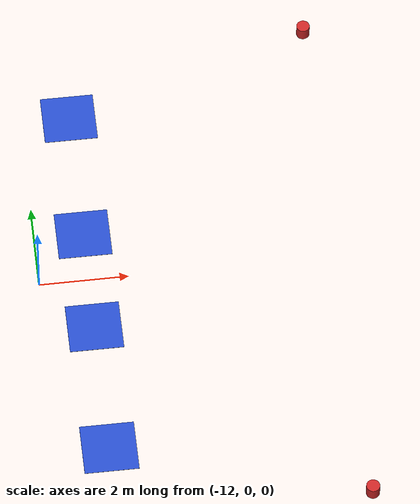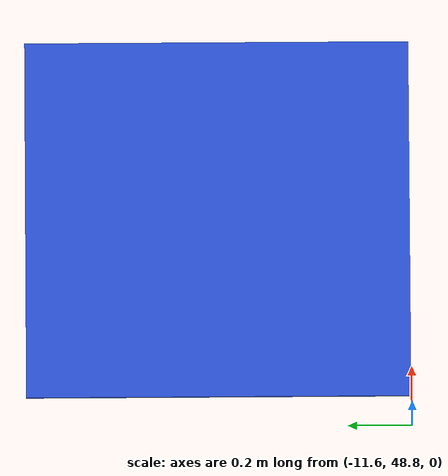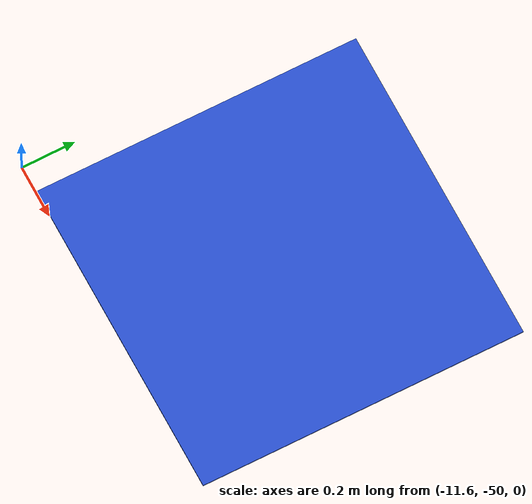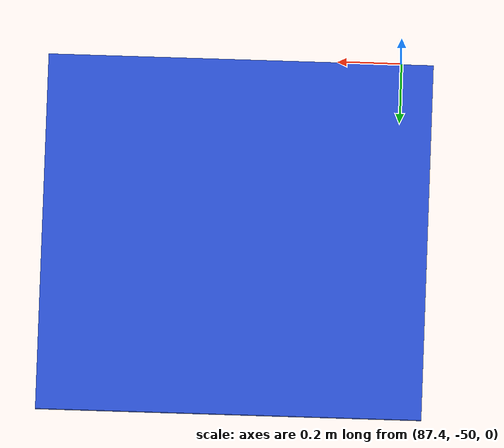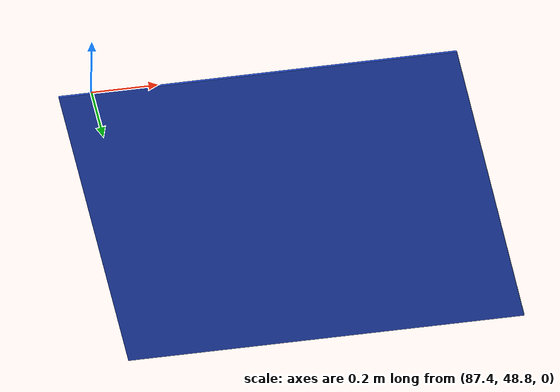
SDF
<?xml version='1.0'?>
<sdf version='1.6'>
  <model name='emiro_pad'>
    <link name='pad_dalam_kiri'>
      <inertial>
        <mass>1</mass>
        <inertia>
          <ixx>0.120003</ixx>
          <ixy>0</ixy>
          <ixz>0</ixz>
          <iyy>0.120003</iyy>
          <iyz>0</iyz>
          <izz>0.24</izz>
        </inertia>
        <pose frame=''>0 0 0 0 -0 0</pose>
      </inertial>
      <pose frame=''>-10.9 1.23263 0.00 0 -0 0</pose>
      <gravity>1</gravity>
      <self_collide>0</self_collide>
      <kinematic>0</kinematic>
      <enable_wind>0</enable_wind>
      <visual name='visual'>
        <pose frame=''>0 0 0 0 -0 0</pose>
        <geometry>
          <box>
            <size>1.2 1.2 0.005869</size>
          </box>
        </geometry>
        <material>
          <lighting>1</lighting>
          <script>
            <uri>file://media/materials/scripts/gazebo.material</uri>
            <name>Gazebo/Blue</name>
          </script>
          <shader type='pixel'>
            <normal_map>__default__</normal_map>
          </shader>
          <ambient>0.3 0.3 0.3 1</ambient>
          <diffuse>0.7 0.7 0.7 1</diffuse>
          <specular>0.01 0.01 0.01 1</specular>
          <emissive>0 0 0 1</emissive>
        </material>
        <transparency>0</transparency>
        <cast_shadows>1</cast_shadows>
      </visual>
      <collision name='collision'>
        <laser_retro>0</laser_retro>
        <max_contacts>10</max_contacts>
        <pose frame=''>0 0 0 0 -0 0</pose>
        <geometry>
          <box>
            <size>1.2 1.2 0.005869</size>
          </box>
        </geometry>
        <surface>
          <friction>
            <ode>
              <mu>1</mu>
              <mu2>1</mu2>
              <fdir1>0 0 0</fdir1>
              <slip1>0</slip1>
              <slip2>0</slip2>
            </ode>
            <torsional>
              <coefficient>1</coefficient>
              <patch_radius>0</patch_radius>
              <surface_radius>0</surface_radius>
              <use_patch_radius>1</use_patch_radius>
              <ode>
                <slip>0</slip>
              </ode>
            </torsional>
          </friction>
          <bounce>
            <restitution_coefficient>0</restitution_coefficient>
            <threshold>1e+06</threshold>
          </bounce>
          <contact>
            <collide_without_contact>0</collide_without_contact>
            <collide_without_contact_bitmask>1</collide_without_contact_bitmask>
            <collide_bitmask>1</collide_bitmask>
            <ode>
              <soft_cfm>0</soft_cfm>
              <soft_erp>0.2</soft_erp>
              <kp>1e+13</kp>
              <kd>1</kd>
              <max_vel>0.01</max_vel>
              <min_depth>0</min_depth>
            </ode>
            <bullet>
              <split_impulse>1</split_impulse>
              <split_impulse_penetration_threshold>-0.01</split_impulse_penetration_threshold>
              <soft_cfm>0</soft_cfm>
              <soft_erp>0.2</soft_erp>
              <kp>1e+13</kp>
              <kd>1</kd>
            </bullet>
          </contact>
        </surface>
      </collision>
    </link>
    <link name='pad_luar_kiri'>
      <inertial>
        <mass>1</mass>
        <inertia>
          <ixx>0.120003</ixx>
          <ixy>0</ixy>
          <ixz>0</ixz>
          <iyy>0.120003</iyy>
          <iyz>0</iyz>
          <izz>0.24</izz>
        </inertia>
        <pose frame=''>0 0 0 0 -0 0</pose>
      </inertial>
      <pose frame=''>-10.9 4.406 0.00 0 -0 0</pose>
      <gravity>1</gravity>
      <self_collide>0</self_collide>
      <kinematic>0</kinematic>
      <enable_wind>0</enable_wind>
      <visual name='visual'>
        <pose frame=''>0 0 0 0 -0 0</pose>
        <geometry>
          <box>
            <size>1.2 1.2 0.005869</size>
          </box>
        </geometry>
        <material>
          <lighting>1</lighting>
          <script>
            <uri>file://media/materials/scripts/gazebo.material</uri>
            <name>Gazebo/Blue</name>
          </script>
          <shader type='pixel'>
            <normal_map>__default__</normal_map>
          </shader>
          <ambient>0.3 0.3 0.3 1</ambient>
          <diffuse>0.7 0.7 0.7 1</diffuse>
          <specular>0.01 0.01 0.01 1</specular>
          <emissive>0 0 0 1</emissive>
        </material>
        <transparency>0</transparency>
        <cast_shadows>1</cast_shadows>
      </visual>
      <collision name='collision'>
        <laser_retro>0</laser_retro>
        <max_contacts>10</max_contacts>
        <pose frame=''>0 0 0 0 -0 0</pose>
        <geometry>
          <box>
            <size>1.2 1.2 0.005869</size>
          </box>
        </geometry>
        <surface>
          <friction>
            <ode>
              <mu>1</mu>
              <mu2>1</mu2>
              <fdir1>0 0 0</fdir1>
              <slip1>0</slip1>
              <slip2>0</slip2>
            </ode>
            <torsional>
              <coefficient>1</coefficient>
              <patch_radius>0</patch_radius>
              <surface_radius>0</surface_radius>
              <use_patch_radius>1</use_patch_radius>
              <ode>
                <slip>0</slip>
              </ode>
            </torsional>
          </friction>
          <bounce>
            <restitution_coefficient>0</restitution_coefficient>
            <threshold>1e+06</threshold>
          </bounce>
          <contact>
            <collide_without_contact>0</collide_without_contact>
            <collide_without_contact_bitmask>1</collide_without_contact_bitmask>
            <collide_bitmask>1</collide_bitmask>
            <ode>
              <soft_cfm>0</soft_cfm>
              <soft_erp>0.2</soft_erp>
              <kp>1e+13</kp>
              <kd>1</kd>
              <max_vel>0.01</max_vel>
              <min_depth>0</min_depth>
            </ode>
            <bullet>
              <split_impulse>1</split_impulse>
              <split_impulse_penetration_threshold>-0.01</split_impulse_penetration_threshold>
              <soft_cfm>0</soft_cfm>
              <soft_erp>0.2</soft_erp>
              <kp>1e+13</kp>
              <kd>1</kd>
            </bullet>
          </contact>
        </surface>
      </collision>
    </link>
    <link name='pad_luar_kanan'>
      <inertial>
        <mass>1</mass>
        <inertia>
          <ixx>0.120003</ixx>
          <ixy>0</ixy>
          <ixz>0</ixz>
          <iyy>0.120003</iyy>
          <iyz>0</iyz>
          <izz>0.24</izz>
        </inertia>
        <pose frame=''>0 0 0 0 -0 0</pose>
      </inertial>
      <pose frame=''>-10.9 -4.40703 0.00 0 -0 0</pose>
      <gravity>1</gravity>
      <self_collide>0</self_collide>
      <kinematic>0</kinematic>
      <enable_wind>0</enable_wind>
      <visual name='visual'>
        <pose frame=''>0 0 0 0 -0 0</pose>
        <geometry>
          <box>
            <size>1.2 1.2 0.005869</size>
          </box>
        </geometry>
        <material>
          <lighting>1</lighting>
          <script>
            <uri>file://media/materials/scripts/gazebo.material</uri>
            <name>Gazebo/Blue</name>
          </script>
          <shader type='pixel'>
            <normal_map>__default__</normal_map>
          </shader>
          <ambient>0.3 0.3 0.3 1</ambient>
          <diffuse>0.7 0.7 0.7 1</diffuse>
          <specular>0.01 0.01 0.01 1</specular>
          <emissive>0 0 0 1</emissive>
        </material>
        <transparency>0</transparency>
        <cast_shadows>1</cast_shadows>
      </visual>
      <collision name='collision'>
        <laser_retro>0</laser_retro>
        <max_contacts>10</max_contacts>
        <pose frame=''>0 0 0 0 -0 0</pose>
        <geometry>
          <box>
            <size>1.2 1.2 0.005869</size>
          </box>
        </geometry>
        <surface>
          <friction>
            <ode>
              <mu>1</mu>
              <mu2>1</mu2>
              <fdir1>0 0 0</fdir1>
              <slip1>0</slip1>
              <slip2>0</slip2>
            </ode>
            <torsional>
              <coefficient>1</coefficient>
              <patch_radius>0</patch_radius>
              <surface_radius>0</surface_radius>
              <use_patch_radius>1</use_patch_radius>
              <ode>
                <slip>0</slip>
              </ode>
            </torsional>
          </friction>
          <bounce>
            <restitution_coefficient>0</restitution_coefficient>
            <threshold>1e+06</threshold>
          </bounce>
          <contact>
            <collide_without_contact>0</collide_without_contact>
            <collide_without_contact_bitmask>1</collide_without_contact_bitmask>
            <collide_bitmask>1</collide_bitmask>
            <ode>
              <soft_cfm>0</soft_cfm>
              <soft_erp>0.2</soft_erp>
              <kp>1e+13</kp>
              <kd>1</kd>
              <max_vel>0.01</max_vel>
              <min_depth>0</min_depth>
            </ode>
            <bullet>
              <split_impulse>1</split_impulse>
              <split_impulse_penetration_threshold>-0.01</split_impulse_penetration_threshold>
              <soft_cfm>0</soft_cfm>
              <soft_erp>0.2</soft_erp>
              <kp>1e+13</kp>
              <kd>1</kd>
            </bullet>
          </contact>
        </surface>
      </collision>
    </link>
    <link name='pad_dalam_kanan'>
      <inertial>
        <mass>1</mass>
        <inertia>
          <ixx>0.120003</ixx>
          <ixy>0</ixy>
          <ixz>0</ixz>
          <iyy>0.120003</iyy>
          <iyz>0</iyz>
          <izz>0.24</izz>
        </inertia>
        <pose frame=''>0 0 0 0 0 0</pose>
      </inertial>
      <pose frame=''>-10.9 -1.24737 0.0 0 0 0</pose>
      <gravity>1</gravity>
      <self_collide>0</self_collide>
      <kinematic>0</kinematic>
      <enable_wind>0</enable_wind>
      <visual name='visual'>
        <pose frame=''>0 0 0 0 0 0</pose>
        <geometry>
          <box>
            <size>1.2 1.2 0.006</size>
          </box>
        </geometry>
        <material>
          <lighting>1</lighting>
          <script>
            <uri>file://media/materials/scripts/gazebo.material</uri>
            <name>Gazebo/Blue</name>
          </script>
          <shader type='pixel'>
            <normal_map>__default__</normal_map>
          </shader>
          <ambient>0.3 0.3 0.3 1</ambient>
          <diffuse>0.7 0.7 0.7 1</diffuse>
          <specular>0.01 0.01 0.01 1</specular>
          <emissive>0 0 0 1</emissive>
        </material>
        <transparency>0</transparency>
        <cast_shadows>1</cast_shadows>
      </visual>
      <collision name='collision'>
        <laser_retro>0</laser_retro>
        <max_contacts>10</max_contacts>
        <pose frame=''>0 0 0 0 0 0</pose>
        <geometry>
          <box>
            <size>1.2 1.2 -0.006</size>
          </box>
        </geometry>
        <surface>
          <friction>
            <ode>
              <mu>1</mu>
              <mu2>1</mu2>
              <fdir1>0 0 0</fdir1>
              <slip1>0</slip1>
              <slip2>0</slip2>
            </ode>
            <torsional>
              <coefficient>1</coefficient>
              <patch_radius>0</patch_radius>
              <surface_radius>0</surface_radius>
              <use_patch_radius>1</use_patch_radius>
              <ode>
                <slip>0</slip>
              </ode>
            </torsional>
          </friction>
          <bounce>
            <restitution_coefficient>0</restitution_coefficient>
            <threshold>1e+06</threshold>
          </bounce>
          <contact>
            <collide_without_contact>0</collide_without_contact>
            <collide_without_contact_bitmask>1</collide_without_contact_bitmask>
            <collide_bitmask>1</collide_bitmask>
            <ode>
              <soft_cfm>0</soft_cfm>
              <soft_erp>0.2</soft_erp>
              <kp>1e+13</kp>
              <kd>1</kd>
              <max_vel>0.01</max_vel>
              <min_depth>0</min_depth>
            </ode>
            <bullet>
              <split_impulse>1</split_impulse>
              <split_impulse_penetration_threshold>-0.01</split_impulse_penetration_threshold>
              <soft_cfm>0</soft_cfm>
              <soft_erp>0.2</soft_erp>
              <kp>1e+13</kp>
              <kd>1</kd>
            </bullet>
          </contact>
        </surface>
      </collision>
    </link>
    <link name='pad_outdoor_kiri_1'>
      <inertial>
        <mass>1</mass>
        <inertia>
          <ixx>0.120003</ixx>
          <ixy>0</ixy>
          <ixz>0</ixz>
          <iyy>0.120003</iyy>
          <iyz>0</iyz>
          <izz>0.24</izz>
        </inertia>
        <pose frame=''>0 0 0 0 -0 0</pose>
      </inertial>
      <pose frame=''>-10.9 49.4026 0.00 0 -0 0</pose>
      <gravity>1</gravity>
      <self_collide>0</self_collide>
      <kinematic>0</kinematic>
      <enable_wind>0</enable_wind>
      <visual name='visual'>
        <pose frame=''>0 0 0 0 -0 0</pose>
        <geometry>
          <box>
            <size>1.2 1.2 0.005869</size>
          </box>
        </geometry>
        <material>
          <lighting>1</lighting>
          <script>
            <uri>file://media/materials/scripts/gazebo.material</uri>
            <name>Gazebo/Blue</name>
          </script>
          <shader type='pixel'>
            <normal_map>__default__</normal_map>
          </shader>
          <ambient>0.3 0.3 0.3 1</ambient>
          <diffuse>0.7 0.7 0.7 1</diffuse>
          <specular>0.01 0.01 0.01 1</specular>
          <emissive>0 0 0 1</emissive>
        </material>
        <transparency>0</transparency>
        <cast_shadows>1</cast_shadows>
      </visual>
      <collision name='collision'>
        <laser_retro>0</laser_retro>
        <max_contacts>10</max_contacts>
        <pose frame=''>0 0 0 0 -0 0</pose>
        <geometry>
          <box>
            <size>1.2 1.2 0.005869</size>
          </box>
        </geometry>
        <surface>
          <friction>
            <ode>
              <mu>1</mu>
              <mu2>1</mu2>
              <fdir1>0 0 0</fdir1>
              <slip1>0</slip1>
              <slip2>0</slip2>
            </ode>
            <torsional>
              <coefficient>1</coefficient>
              <patch_radius>0</patch_radius>
              <surface_radius>0</surface_radius>
              <use_patch_radius>1</use_patch_radius>
              <ode>
                <slip>0</slip>
              </ode>
            </torsional>
          </friction>
          <bounce>
            <restitution_coefficient>0</restitution_coefficient>
            <threshold>1e+06</threshold>
          </bounce>
          <contact>
            <collide_without_contact>0</collide_without_contact>
            <collide_without_contact_bitmask>1</collide_without_contact_bitmask>
            <collide_bitmask>1</collide_bitmask>
            <ode>
              <soft_cfm>0</soft_cfm>
              <soft_erp>0.2</soft_erp>
              <kp>1e+13</kp>
              <kd>1</kd>
              <max_vel>0.01</max_vel>
              <min_depth>0</min_depth>
            </ode>
            <bullet>
              <split_impulse>1</split_impulse>
              <split_impulse_penetration_threshold>-0.01</split_impulse_penetration_threshold>
              <soft_cfm>0</soft_cfm>
              <soft_erp>0.2</soft_erp>
              <kp>1e+13</kp>
              <kd>1</kd>
            </bullet>
          </contact>
        </surface>
      </collision>
    </link>
    <link name='pad_outdoor_kiri_2'>
      <inertial>
        <mass>1</mass>
        <inertia>
          <ixx>0.120003</ixx>
          <ixy>0</ixy>
          <ixz>0</ixz>
          <iyy>0.120003</iyy>
          <iyz>0</iyz>
          <izz>0.24</izz>
        </inertia>
        <pose frame=''>0 0 0 0 -0 0</pose>
      </inertial>
      <pose frame=''>87.9 49.4026 0.00 0 -0 0</pose>
      <gravity>1</gravity>
      <self_collide>0</self_collide>
      <kinematic>0</kinematic>
      <enable_wind>0</enable_wind>
      <visual name='visual'>
        <pose frame=''>0 0 0 0 -0 0</pose>
        <geometry>
          <box>
            <size>1.2 1.2 0.005869</size>
          </box>
        </geometry>
        <material>
          <lighting>1</lighting>
          <script>
            <uri>file://media/materials/scripts/gazebo.material</uri>
            <name>Gazebo/Blue</name>
          </script>
          <shader type='pixel'>
            <normal_map>__default__</normal_map>
          </shader>
          <ambient>0.3 0.3 0.3 1</ambient>
          <diffuse>0.7 0.7 0.7 1</diffuse>
          <specular>0.01 0.01 0.01 1</specular>
          <emissive>0 0 0 1</emissive>
        </material>
        <transparency>0</transparency>
        <cast_shadows>1</cast_shadows>
      </visual>
      <collision name='collision'>
        <laser_retro>0</laser_retro>
        <max_contacts>10</max_contacts>
        <pose frame=''>0 0 0 0 -0 0</pose>
        <geometry>
          <box>
            <size>1.2 1.2 0.005869</size>
          </box>
        </geometry>
        <surface>
          <friction>
            <ode>
              <mu>1</mu>
              <mu2>1</mu2>
              <fdir1>0 0 0</fdir1>
              <slip1>0</slip1>
              <slip2>0</slip2>
            </ode>
            <torsional>
              <coefficient>1</coefficient>
              <patch_radius>0</patch_radius>
              <surface_radius>0</surface_radius>
              <use_patch_radius>1</use_patch_radius>
              <ode>
                <slip>0</slip>
              </ode>
            </torsional>
          </friction>
          <bounce>
            <restitution_coefficient>0</restitution_coefficient>
            <threshold>1e+06</threshold>
          </bounce>
          <contact>
            <collide_without_contact>0</collide_without_contact>
            <collide_without_contact_bitmask>1</collide_without_contact_bitmask>
            <collide_bitmask>1</collide_bitmask>
            <ode>
              <soft_cfm>0</soft_cfm>
              <soft_erp>0.2</soft_erp>
              <kp>1e+13</kp>
              <kd>1</kd>
              <max_vel>0.01</max_vel>
              <min_depth>0</min_depth>
            </ode>
            <bullet>
              <split_impulse>1</split_impulse>
              <split_impulse_penetration_threshold>-0.01</split_impulse_penetration_threshold>
              <soft_cfm>0</soft_cfm>
              <soft_erp>0.2</soft_erp>
              <kp>1e+13</kp>
              <kd>1</kd>
            </bullet>
          </contact>
        </surface>
      </collision>
    </link>
    <link name='pad_outdoor_kanan_2'>
      <inertial>
        <mass>1</mass>
        <inertia>
          <ixx>0.120003</ixx>
          <ixy>0</ixy>
          <ixz>0</ixz>
          <iyy>0.120003</iyy>
          <iyz>0</iyz>
          <izz>0.24</izz>
        </inertia>
        <pose frame=''>0 0 0 0 -0 0</pose>
      </inertial>
      <pose frame=''>87.9 -49.3974 0.00 0 -0 0</pose>
      <gravity>1</gravity>
      <self_collide>0</self_collide>
      <kinematic>0</kinematic>
      <enable_wind>0</enable_wind>
      <visual name='visual'>
        <pose frame=''>0 0 0 0 -0 0</pose>
        <geometry>
          <box>
            <size>1.2 1.2 0.005869</size>
          </box>
        </geometry>
        <material>
          <lighting>1</lighting>
          <script>
            <uri>file://media/materials/scripts/gazebo.material</uri>
            <name>Gazebo/Blue</name>
          </script>
          <shader type='pixel'>
            <normal_map>__default__</normal_map>
          </shader>
          <ambient>0.3 0.3 0.3 1</ambient>
          <diffuse>0.7 0.7 0.7 1</diffuse>
          <specular>0.01 0.01 0.01 1</specular>
          <emissive>0 0 0 1</emissive>
        </material>
        <transparency>0</transparency>
        <cast_shadows>1</cast_shadows>
      </visual>
      <collision name='collision'>
        <laser_retro>0</laser_retro>
        <max_contacts>10</max_contacts>
        <pose frame=''>0 0 0 0 -0 0</pose>
        <geometry>
          <box>
            <size>1.2 1.2 0.005869</size>
          </box>
        </geometry>
        <surface>
          <friction>
            <ode>
              <mu>1</mu>
              <mu2>1</mu2>
              <fdir1>0 0 0</fdir1>
              <slip1>0</slip1>
              <slip2>0</slip2>
            </ode>
            <torsional>
              <coefficient>1</coefficient>
              <patch_radius>0</patch_radius>
              <surface_radius>0</surface_radius>
              <use_patch_radius>1</use_patch_radius>
              <ode>
                <slip>0</slip>
              </ode>
            </torsional>
          </friction>
          <bounce>
            <restitution_coefficient>0</restitution_coefficient>
            <threshold>1e+06</threshold>
          </bounce>
          <contact>
            <collide_without_contact>0</collide_without_contact>
            <collide_without_contact_bitmask>1</collide_without_contact_bitmask>
            <collide_bitmask>1</collide_bitmask>
            <ode>
              <soft_cfm>0</soft_cfm>
              <soft_erp>0.2</soft_erp>
              <kp>1e+13</kp>
              <kd>1</kd>
              <max_vel>0.01</max_vel>
              <min_depth>0</min_depth>
            </ode>
            <bullet>
              <split_impulse>1</split_impulse>
              <split_impulse_penetration_threshold>-0.01</split_impulse_penetration_threshold>
              <soft_cfm>0</soft_cfm>
              <soft_erp>0.2</soft_erp>
              <kp>1e+13</kp>
              <kd>1</kd>
            </bullet>
          </contact>
        </surface>
      </collision>
    </link>
    <link name='pad_outdoor_kanan_1'>
      <inertial>
        <mass>1</mass>
        <inertia>
          <ixx>0.120003</ixx>
          <ixy>0</ixy>
          <ixz>0</ixz>
          <iyy>0.120003</iyy>
          <iyz>0</iyz>
          <izz>0.24</izz>
        </inertia>
        <pose frame=''>0 0 0 0 -0 0</pose>
      </inertial>
      <pose frame=''>-10.9 -49.3974 0.00 0 -0 0</pose>
      <gravity>1</gravity>
      <self_collide>0</self_collide>
      <kinematic>0</kinematic>
      <enable_wind>0</enable_wind>
      <visual name='visual'>
        <pose frame=''>0 0 0 0 -0 0</pose>
        <geometry>
          <box>
            <size>1.2 1.2 0.005869</size>
          </box>
        </geometry>
        <material>
          <lighting>1</lighting>
          <script>
            <uri>file://media/materials/scripts/gazebo.material</uri>
            <name>Gazebo/Blue</name>
          </script>
          <shader type='pixel'>
            <normal_map>__default__</normal_map>
          </shader>
          <ambient>0.3 0.3 0.3 1</ambient>
          <diffuse>0.7 0.7 0.7 1</diffuse>
          <specular>0.01 0.01 0.01 1</specular>
          <emissive>0 0 0 1</emissive>
        </material>
        <transparency>0</transparency>
        <cast_shadows>1</cast_shadows>
      </visual>
      <collision name='collision'>
        <laser_retro>0</laser_retro>
        <max_contacts>10</max_contacts>
        <pose frame=''>0 0 0 0 -0 0</pose>
        <geometry>
          <box>
            <size>1.2 1.2 0.005869</size>
          </box>
        </geometry>
        <surface>
          <friction>
            <ode>
              <mu>1</mu>
              <mu2>1</mu2>
              <fdir1>0 0 0</fdir1>
              <slip1>0</slip1>
              <slip2>0</slip2>
            </ode>
            <torsional>
              <coefficient>1</coefficient>
              <patch_radius>0</patch_radius>
              <surface_radius>0</surface_radius>
              <use_patch_radius>1</use_patch_radius>
              <ode>
                <slip>0</slip>
              </ode>
            </torsional>
          </friction>
          <bounce>
            <restitution_coefficient>0</restitution_coefficient>
            <threshold>1e+06</threshold>
          </bounce>
          <contact>
            <collide_without_contact>0</collide_without_contact>
            <collide_without_contact_bitmask>1</collide_without_contact_bitmask>
            <collide_bitmask>1</collide_bitmask>
            <ode>
              <soft_cfm>0</soft_cfm>
              <soft_erp>0.2</soft_erp>
              <kp>1e+13</kp>
              <kd>1</kd>
              <max_vel>0.01</max_vel>
              <min_depth>0</min_depth>
            </ode>
            <bullet>
              <split_impulse>1</split_impulse>
              <split_impulse_penetration_threshold>-0.01</split_impulse_penetration_threshold>
              <soft_cfm>0</soft_cfm>
              <soft_erp>0.2</soft_erp>
              <kp>1e+13</kp>
              <kd>1</kd>
            </bullet>
          </contact>
        </surface>
      </collision>
    </link>
    <link name='link_4'>
      <inertial>
        <mass>1</mass>
        <inertia>
          <ixx>0.145833</ixx>
          <ixy>0</ixy>
          <ixz>0</ixz>
          <iyy>0.145833</iyy>
          <iyz>0</iyz>
          <izz>0.125</izz>
        </inertia>
        <pose frame=''>0 0 0 0 -0 0</pose>
      </inertial>
      <pose frame=''>-5.3169 6.18263 0.12 0 -0 0</pose>
      <gravity>1</gravity>
      <self_collide>0</self_collide>
      <kinematic>0</kinematic>
      <enable_wind>0</enable_wind>
      <visual name='visual'>
        <pose frame=''>0 0 0 0 -0 0</pose>
        <geometry>
          <cylinder>
            <radius>0.15</radius>
            <length>0.3</length>
          </cylinder>
        </geometry>
        <material>
          <lighting>1</lighting>
          <script>
            <uri>file://media/materials/scripts/gazebo.material</uri>
            <name>Gazebo/Red</name>
          </script>
          <shader type='pixel'>
            <normal_map>__default__</normal_map>
          </shader>
          <ambient>0.3 0.3 0.3 1</ambient>
          <diffuse>0.7 0.7 0.7 1</diffuse>
          <specular>0.01 0.01 0.01 1</specular>
          <emissive>0 0 0 1</emissive>
        </material>
        <transparency>0</transparency>
        <cast_shadows>1</cast_shadows>
      </visual>
      <collision name='collision'>
        <laser_retro>0</laser_retro>
        <max_contacts>10</max_contacts>
        <pose frame=''>0 0 0 0 -0 0</pose>
        <geometry>
          <cylinder>
            <radius>0.15</radius>
            <length>0.3</length>
          </cylinder>
        </geometry>
        <surface>
          <friction>
            <ode>
              <mu>1</mu>
              <mu2>1</mu2>
              <fdir1>0 0 0</fdir1>
              <slip1>0</slip1>
              <slip2>0</slip2>
            </ode>
            <torsional>
              <coefficient>1</coefficient>
              <patch_radius>0</patch_radius>
              <surface_radius>0</surface_radius>
              <use_patch_radius>1</use_patch_radius>
              <ode>
                <slip>0</slip>
              </ode>
            </torsional>
          </friction>
          <bounce>
            <restitution_coefficient>0</restitution_coefficient>
            <threshold>1e+06</threshold>
          </bounce>
          <contact>
            <collide_without_contact>0</collide_without_contact>
            <collide_without_contact_bitmask>1</collide_without_contact_bitmask>
            <collide_bitmask>1</collide_bitmask>
            <ode>
              <soft_cfm>0</soft_cfm>
              <soft_erp>0.2</soft_erp>
              <kp>1e+13</kp>
              <kd>1</kd>
              <max_vel>0.01</max_vel>
              <min_depth>0</min_depth>
            </ode>
            <bullet>
              <split_impulse>1</split_impulse>
              <split_impulse_penetration_threshold>-0.01</split_impulse_penetration_threshold>
              <soft_cfm>0</soft_cfm>
              <soft_erp>0.2</soft_erp>
              <kp>1e+13</kp>
              <kd>1</kd>
            </bullet>
          </contact>
        </surface>
      </collision>
    </link>
    <link name='link_4_clone'>
      <inertial>
        <mass>1</mass>
        <inertia>
          <ixx>0.145833</ixx>
          <ixy>0</ixy>
          <ixz>0</ixz>
          <iyy>0.145833</iyy>
          <iyz>0</iyz>
          <izz>0.125</izz>
        </inertia>
        <pose frame=''>0 0 0 0 -0 0</pose>
      </inertial>
      <pose frame=''>-5.3169 -6.17737 0.12 0 -0 0</pose>
      <gravity>1</gravity>
      <self_collide>0</self_collide>
      <kinematic>0</kinematic>
      <enable_wind>0</enable_wind>
      <visual name='visual'>
        <pose frame=''>0 0 0 0 -0 0</pose>
        <geometry>
          <cylinder>
            <radius>0.15</radius>
            <length>0.3</length>
          </cylinder>
        </geometry>
        <material>
          <lighting>1</lighting>
          <script>
            <uri>file://media/materials/scripts/gazebo.material</uri>
            <name>Gazebo/Red</name>
          </script>
          <shader type='pixel'>
            <normal_map>__default__</normal_map>
          </shader>
          <ambient>0.3 0.3 0.3 1</ambient>
          <diffuse>0.7 0.7 0.7 1</diffuse>
          <specular>0.01 0.01 0.01 1</specular>
          <emissive>0 0 0 1</emissive>
        </material>
        <transparency>0</transparency>
        <cast_shadows>1</cast_shadows>
      </visual>
      <collision name='collision'>
        <laser_retro>0</laser_retro>
        <max_contacts>10</max_contacts>
        <pose frame=''>0 0 0 0 -0 0</pose>
        <geometry>
          <cylinder>
            <radius>0.15</radius>
            <length>0.3</length>
          </cylinder>
        </geometry>
        <surface>
          <friction>
            <ode>
              <mu>1</mu>
              <mu2>1</mu2>
              <fdir1>0 0 0</fdir1>
              <slip1>0</slip1>
              <slip2>0</slip2>
            </ode>
            <torsional>
              <coefficient>1</coefficient>
              <patch_radius>0</patch_radius>
              <surface_radius>0</surface_radius>
              <use_patch_radius>1</use_patch_radius>
              <ode>
                <slip>0</slip>
              </ode>
            </torsional>
          </friction>
          <bounce>
            <restitution_coefficient>0</restitution_coefficient>
            <threshold>1e+06</threshold>
          </bounce>
          <contact>
            <collide_without_contact>0</collide_without_contact>
            <collide_without_contact_bitmask>1</collide_without_contact_bitmask>
            <collide_bitmask>1</collide_bitmask>
            <ode>
              <soft_cfm>0</soft_cfm>
              <soft_erp>0.2</soft_erp>
              <kp>1e+13</kp>
              <kd>1</kd>
              <max_vel>0.01</max_vel>
              <min_depth>0</min_depth>
            </ode>
            <bullet>
              <split_impulse>1</split_impulse>
              <split_impulse_penetration_threshold>-0.01</split_impulse_penetration_threshold>
              <soft_cfm>0</soft_cfm>
              <soft_erp>0.2</soft_erp>
              <kp>1e+13</kp>
              <kd>1</kd>
            </bullet>
          </contact>
        </surface>
      </collision>
    </link>
  </model>
</sdf>
